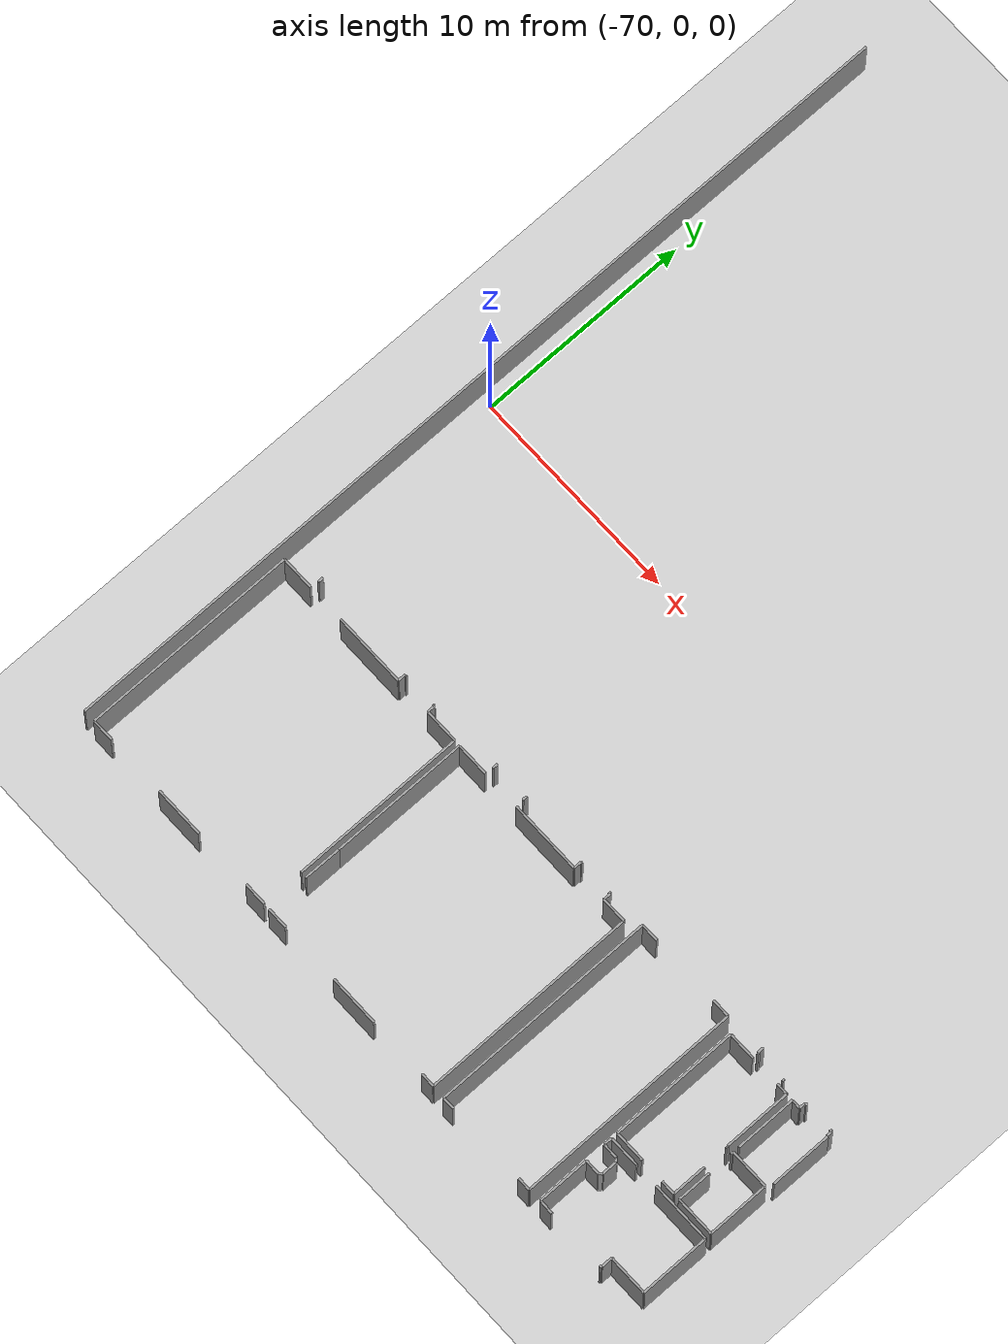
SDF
<sdf version="1.6">
 <world name="default">
  <model name="ground_plane">
   <static>1</static>
   <link name="link">
    <collision name="collision">
     <geometry><plane><normal>0 0 1</normal><size>100 100</size></plane></geometry>
     <surface><friction><ode><mu>100</mu><mu2>50</mu2></ode></friction></surface>
    </collision>
    <visual name="visual">
     <cast_shadows>0</cast_shadows>
     <geometry><plane><normal>0 0 1</normal><size>100 100</size></plane></geometry>
     <material>
      <script><uri>file://media/materials/scripts/gazebo.material</uri><name>Gazebo/Grey</name></script>
     </material>
    </visual>
   </link>
  </model>
  <model name="50055638">
   <static>1</static>
   <link name="Wall_39">
    <collision name="Wall_39_Collision">
     <geometry><box><size>10.0029868009 0.1 2.5</size></box></geometry>
     <pose>5.00149340044 0 1.25 0 0 0</pose>
    </collision>
    <visual name="Wall_39_Visual">
     <pose>5.00149340044 0 1.25 0 0 0</pose>
     <geometry><box><size>10.0029868009 0.1 2.5</size></box></geometry>
     <material>
      <script><uri>file://media/materials/scripts/gazebo.material</uri><name>Gazebo/Grey</name></script>
      <ambient>1 1 1 1</ambient>
     </material>
    </visual>
    <pose>0.555672061973 -41.7491849847 0 0 0 1.57079632679</pose>
   </link>
   <link name="Wall_40">
    <collision name="Wall_40_Collision">
     <geometry><box><size>1.56711722876 0.1 2.5</size></box></geometry>
     <pose>0.783558614379 0 1.25 0 0 0</pose>
    </collision>
    <visual name="Wall_40_Visual">
     <pose>0.783558614379 0 1.25 0 0 0</pose>
     <geometry><box><size>1.56711722876 0.1 2.5</size></box></geometry>
     <material>
      <script><uri>file://media/materials/scripts/gazebo.material</uri><name>Gazebo/Grey</name></script>
      <ambient>1 1 1 1</ambient>
     </material>
    </visual>
    <pose>0.555672061973 -31.7461981838 0 0 0 0.0</pose>
   </link>
   <link name="Wall_41">
    <collision name="Wall_41_Collision">
     <geometry><box><size>3.40889304075 0.1 2.5</size></box></geometry>
     <pose>1.70444652038 0 1.25 0 0 0</pose>
    </collision>
    <visual name="Wall_41_Visual">
     <pose>1.70444652038 0 1.25 0 0 0</pose>
     <geometry><box><size>3.40889304075 0.1 2.5</size></box></geometry>
     <material>
      <script><uri>file://media/materials/scripts/gazebo.material</uri><name>Gazebo/Grey</name></script>
      <ambient>1 1 1 1</ambient>
     </material>
    </visual>
    <pose>3.90470198718 -31.7461981838 0 0 0 0.0</pose>
   </link>
   <link name="Wall_42">
    <collision name="Wall_42_Collision">
     <geometry><box><size>0.354221874821 0.1 2.5</size></box></geometry>
     <pose>0.177110937411 0 1.25 0 0 0</pose>
    </collision>
    <visual name="Wall_42_Visual">
     <pose>0.177110937411 0 1.25 0 0 0</pose>
     <geometry><box><size>0.354221874821 0.1 2.5</size></box></geometry>
     <material>
      <script><uri>file://media/materials/scripts/gazebo.material</uri><name>Gazebo/Grey</name></script>
      <ambient>1 1 1 1</ambient>
     </material>
    </visual>
    <pose>7.31359502793 -31.7461981838 0 0 0 1.57079632679</pose>
   </link>
   <link name="Wall_43">
    <collision name="Wall_43_Collision">
     <geometry><box><size>0.08121556441 0.1 2.5</size></box></geometry>
     <pose>0.040607782205 0 1.25 0 0 0</pose>
    </collision>
    <visual name="Wall_43_Visual">
     <pose>0.040607782205 0 1.25 0 0 0</pose>
     <geometry><box><size>0.08121556441 0.1 2.5</size></box></geometry>
     <material>
      <script><uri>file://media/materials/scripts/gazebo.material</uri><name>Gazebo/Grey</name></script>
      <ambient>1 1 1 1</ambient>
     </material>
    </visual>
    <pose>7.31359502793 -31.3919763089 0 0 0 0.0</pose>
   </link>
   <link name="Wall_44">
    <collision name="Wall_44_Collision">
     <geometry><box><size>0.100280250891 0.1 2.5</size></box></geometry>
     <pose>0.0501401254456 0 1.25 0 0 0</pose>
    </collision>
    <visual name="Wall_44_Visual">
     <pose>0.0501401254456 0 1.25 0 0 0</pose>
     <geometry><box><size>0.100280250891 0.1 2.5</size></box></geometry>
     <material>
      <script><uri>file://media/materials/scripts/gazebo.material</uri><name>Gazebo/Grey</name></script>
      <ambient>1 1 1 1</ambient>
     </material>
    </visual>
    <pose>8.94299023253 -31.3919763089 0 0 0 0.0</pose>
   </link>
   <link name="Wall_45">
    <collision name="Wall_45_Collision">
     <geometry><box><size>0.348756664697 0.1 2.5</size></box></geometry>
     <pose>0.174378332348 0 1.25 0 0 0</pose>
    </collision>
    <visual name="Wall_45_Visual">
     <pose>0.174378332348 0 1.25 0 0 0</pose>
     <geometry><box><size>0.348756664697 0.1 2.5</size></box></geometry>
     <material>
      <script><uri>file://media/materials/scripts/gazebo.material</uri><name>Gazebo/Grey</name></script>
      <ambient>1 1 1 1</ambient>
     </material>
    </visual>
    <pose>9.04327048342 -31.3919763089 0 0 0 -1.57079632679</pose>
   </link>
   <link name="Wall_46">
    <collision name="Wall_46_Collision">
     <geometry><box><size>1.58630901315 0.1 2.5</size></box></geometry>
     <pose>0.793154506574 0 1.25 0 0 0</pose>
    </collision>
    <visual name="Wall_46_Visual">
     <pose>0.793154506574 0 1.25 0 0 0</pose>
     <geometry><box><size>1.58630901315 0.1 2.5</size></box></geometry>
     <material>
      <script><uri>file://media/materials/scripts/gazebo.material</uri><name>Gazebo/Grey</name></script>
      <ambient>1 1 1 1</ambient>
     </material>
    </visual>
    <pose>9.04327048342 -31.7407329736 0 0 0 0.0</pose>
   </link>
   <link name="Wall_47">
    <collision name="Wall_47_Collision">
     <geometry><box><size>8.08126640357 0.1 2.5</size></box></geometry>
     <pose>4.04063320179 0 1.25 0 0 0</pose>
    </collision>
    <visual name="Wall_47_Visual">
     <pose>4.04063320179 0 1.25 0 0 0</pose>
     <geometry><box><size>8.08126640357 0.1 2.5</size></box></geometry>
     <material>
      <script><uri>file://media/materials/scripts/gazebo.material</uri><name>Gazebo/Grey</name></script>
      <ambient>1 1 1 1</ambient>
     </material>
    </visual>
    <pose>10.6295794966 -31.7407329736 0 0 0 -1.57079632679</pose>
   </link>
   <link name="Wall_48">
    <collision name="Wall_48_Collision">
     <geometry><box><size>1.06584307221 0.1 2.5</size></box></geometry>
     <pose>0.532921536105 0 1.25 0 0 0</pose>
    </collision>
    <visual name="Wall_48_Visual">
     <pose>0.532921536105 0 1.25 0 0 0</pose>
     <geometry><box><size>1.06584307221 0.1 2.5</size></box></geometry>
     <material>
      <script><uri>file://media/materials/scripts/gazebo.material</uri><name>Gazebo/Grey</name></script>
      <ambient>1 1 1 1</ambient>
     </material>
    </visual>
    <pose>10.6295794966 -41.7413049142 0 0 0 3.14159265359</pose>
   </link>
   <link name="Wall_49">
    <collision name="Wall_49_Collision">
     <geometry><box><size>2.35067584314 0.1 2.5</size></box></geometry>
     <pose>1.17533792157 0 1.25 0 0 0</pose>
    </collision>
    <visual name="Wall_49_Visual">
     <pose>1.17533792157 0 1.25 0 0 0</pose>
     <geometry><box><size>2.35067584314 0.1 2.5</size></box></geometry>
     <material>
      <script><uri>file://media/materials/scripts/gazebo.material</uri><name>Gazebo/Grey</name></script>
      <ambient>1 1 1 1</ambient>
     </material>
    </visual>
    <pose>6.76097331579 -41.7413049142 0 0 0 3.14159265359</pose>
   </link>
   <link name="Wall_50">
    <collision name="Wall_50_Collision">
     <geometry><box><size>1.03638631526 0.1 2.5</size></box></geometry>
     <pose>0.518193157629 0 1.25 0 0 0</pose>
    </collision>
    <visual name="Wall_50_Visual">
     <pose>0.518193157629 0 1.25 0 0 0</pose>
     <geometry><box><size>1.03638631526 0.1 2.5</size></box></geometry>
     <material>
      <script><uri>file://media/materials/scripts/gazebo.material</uri><name>Gazebo/Grey</name></script>
      <ambient>1 1 1 1</ambient>
     </material>
    </visual>
    <pose>1.59202841909 -41.7413049142 0 0 0 -3.13398917</pose>
   </link>
   <link name="Wall_51">
    <collision name="Wall_51_Collision">
     <geometry><box><size>6.35845423522 0.1 2.5</size></box></geometry>
     <pose>3.17922711761 0 1.25 0 0 0</pose>
    </collision>
    <visual name="Wall_51_Visual">
     <pose>3.17922711761 0 1.25 0 0 0</pose>
     <geometry><box><size>6.35845423522 0.1 2.5</size></box></geometry>
     <material>
      <script><uri>file://media/materials/scripts/gazebo.material</uri><name>Gazebo/Grey</name></script>
      <ambient>1 1 1 1</ambient>
     </material>
    </visual>
    <pose>10.9144059126 -38.1087195521 0 0 0 1.57079632679</pose>
   </link>
   <link name="Wall_52">
    <collision name="Wall_52_Collision">
     <geometry><box><size>1.52606460387 0.1 2.5</size></box></geometry>
     <pose>0.763032301934 0 1.25 0 0 0</pose>
    </collision>
    <visual name="Wall_52_Visual">
     <pose>0.763032301934 0 1.25 0 0 0</pose>
     <geometry><box><size>1.52606460387 0.1 2.5</size></box></geometry>
     <material>
      <script><uri>file://media/materials/scripts/gazebo.material</uri><name>Gazebo/Grey</name></script>
      <ambient>1 1 1 1</ambient>
     </material>
    </visual>
    <pose>10.9144059126 -31.7502653169 0 0 0 0.0</pose>
   </link>
   <link name="Wall_53">
    <collision name="Wall_53_Collision">
     <geometry><box><size>3.38970125636 0.1 2.5</size></box></geometry>
     <pose>1.69485062818 0 1.25 0 0 0</pose>
    </collision>
    <visual name="Wall_53_Visual">
     <pose>1.69485062818 0 1.25 0 0 0</pose>
     <geometry><box><size>3.38970125636 0.1 2.5</size></box></geometry>
     <material>
      <script><uri>file://media/materials/scripts/gazebo.material</uri><name>Gazebo/Grey</name></script>
      <ambient>1 1 1 1</ambient>
     </material>
    </visual>
    <pose>14.2498363614 -31.7502653169 0 0 0 0.0</pose>
   </link>
   <link name="Wall_54">
    <collision name="Wall_54_Collision">
     <geometry><box><size>0.349137958426 0.1 2.5</size></box></geometry>
     <pose>0.174568979213 0 1.25 0 0 0</pose>
    </collision>
    <visual name="Wall_54_Visual">
     <pose>0.174568979213 0 1.25 0 0 0</pose>
     <geometry><box><size>0.349137958426 0.1 2.5</size></box></geometry>
     <material>
      <script><uri>file://media/materials/scripts/gazebo.material</uri><name>Gazebo/Grey</name></script>
      <ambient>1 1 1 1</ambient>
     </material>
    </visual>
    <pose>17.6395376178 -31.7502653169 0 0 0 1.57079632679</pose>
   </link>
   <link name="Wall_55">
    <collision name="Wall_55_Collision">
     <geometry><box><size>0.0879517536334 0.1 2.5</size></box></geometry>
     <pose>0.0439758768167 0 1.25 0 0 0</pose>
    </collision>
    <visual name="Wall_55_Visual">
     <pose>0.0439758768167 0 1.25 0 0 0</pose>
     <geometry><box><size>0.0879517536334 0.1 2.5</size></box></geometry>
     <material>
      <script><uri>file://media/materials/scripts/gazebo.material</uri><name>Gazebo/Grey</name></script>
      <ambient>1 1 1 1</ambient>
     </material>
    </visual>
    <pose>17.6395376178 -31.4011273585 0 0 0 0.0</pose>
   </link>
   <link name="Wall_56">
    <collision name="Wall_56_Collision">
     <geometry><box><size>0.0950692365864 0.1 2.5</size></box></geometry>
     <pose>0.0475346182932 0 1.25 0 0 0</pose>
    </collision>
    <visual name="Wall_56_Visual">
     <pose>0.0475346182932 0 1.25 0 0 0</pose>
     <geometry><box><size>0.0950692365864 0.1 2.5</size></box></geometry>
     <material>
      <script><uri>file://media/materials/scripts/gazebo.material</uri><name>Gazebo/Grey</name></script>
      <ambient>1 1 1 1</ambient>
     </material>
    </visual>
    <pose>19.2721102701 -31.4011273585 0 0 0 0.0</pose>
   </link>
   <link name="Wall_57">
    <collision name="Wall_57_Collision">
     <geometry><box><size>0.347231489778 0.1 2.5</size></box></geometry>
     <pose>0.173615744889 0 1.25 0 0 0</pose>
    </collision>
    <visual name="Wall_57_Visual">
     <pose>0.173615744889 0 1.25 0 0 0</pose>
     <geometry><box><size>0.347231489778 0.1 2.5</size></box></geometry>
     <material>
      <script><uri>file://media/materials/scripts/gazebo.material</uri><name>Gazebo/Grey</name></script>
      <ambient>1 1 1 1</ambient>
     </material>
    </visual>
    <pose>19.3671795067 -31.4011273585 0 0 0 -1.57079632679</pose>
   </link>
   <link name="Wall_58">
    <collision name="Wall_58_Collision">
     <geometry><box><size>1.16396265863 0.1 2.5</size></box></geometry>
     <pose>0.581981329317 0 1.25 0 0 0</pose>
    </collision>
    <visual name="Wall_58_Visual">
     <pose>0.581981329317 0 1.25 0 0 0</pose>
     <geometry><box><size>1.16396265863 0.1 2.5</size></box></geometry>
     <material>
      <script><uri>file://media/materials/scripts/gazebo.material</uri><name>Gazebo/Grey</name></script>
      <ambient>1 1 1 1</ambient>
     </material>
    </visual>
    <pose>19.3671795067 -31.7483588482 0 0 0 0.0</pose>
   </link>
   <link name="Wall_59">
    <collision name="Wall_59_Collision">
     <geometry><box><size>9.99777578658 0.1 2.5</size></box></geometry>
     <pose>4.99888789329 0 1.25 0 0 0</pose>
    </collision>
    <visual name="Wall_59_Visual">
     <pose>4.99888789329 0 1.25 0 0 0</pose>
     <geometry><box><size>9.99777578658 0.1 2.5</size></box></geometry>
     <material>
      <script><uri>file://media/materials/scripts/gazebo.material</uri><name>Gazebo/Grey</name></script>
      <ambient>1 1 1 1</ambient>
     </material>
    </visual>
    <pose>20.5311421654 -31.7483588482 0 0 0 -1.57079632679</pose>
   </link>
   <link name="Wall_60">
    <collision name="Wall_60_Collision">
     <geometry><box><size>0.660782033439 0.1 2.5</size></box></geometry>
     <pose>0.33039101672 0 1.25 0 0 0</pose>
    </collision>
    <visual name="Wall_60_Visual">
     <pose>0.33039101672 0 1.25 0 0 0</pose>
     <geometry><box><size>0.660782033439 0.1 2.5</size></box></geometry>
     <material>
      <script><uri>file://media/materials/scripts/gazebo.material</uri><name>Gazebo/Grey</name></script>
      <ambient>1 1 1 1</ambient>
     </material>
    </visual>
    <pose>20.5311421654 -41.7461346348 0 0 0 3.14159265359</pose>
   </link>
   <link name="Wall_61">
    <collision name="Wall_61_Collision">
     <geometry><box><size>2.36351273203 0.1 2.5</size></box></geometry>
     <pose>1.18175636602 0 1.25 0 0 0</pose>
    </collision>
    <visual name="Wall_61_Visual">
     <pose>1.18175636602 0 1.25 0 0 0</pose>
     <geometry><box><size>2.36351273203 0.1 2.5</size></box></geometry>
     <material>
      <script><uri>file://media/materials/scripts/gazebo.material</uri><name>Gazebo/Grey</name></script>
      <ambient>1 1 1 1</ambient>
     </material>
    </visual>
    <pose>17.0800526185 -41.7461346348 0 0 0 3.14159265359</pose>
   </link>
   <link name="Wall_62">
    <collision name="Wall_62_Collision">
     <geometry><box><size>0.989584326286 0.1 2.5</size></box></geometry>
     <pose>0.494792163143 0 1.25 0 0 0</pose>
    </collision>
    <visual name="Wall_62_Visual">
     <pose>0.494792163143 0 1.25 0 0 0</pose>
     <geometry><box><size>0.989584326286 0.1 2.5</size></box></geometry>
     <material>
      <script><uri>file://media/materials/scripts/gazebo.material</uri><name>Gazebo/Grey</name></script>
      <ambient>1 1 1 1</ambient>
     </material>
    </visual>
    <pose>11.8957288747 -41.7461346348 0 0 0 3.14159265359</pose>
   </link>
   <link name="Wall_63">
    <collision name="Wall_63_Collision">
     <geometry><box><size>1.71940037198 0.1 2.5</size></box></geometry>
     <pose>0.859700185989 0 1.25 0 0 0</pose>
    </collision>
    <visual name="Wall_63_Visual">
     <pose>0.859700185989 0 1.25 0 0 0</pose>
     <geometry><box><size>1.71940037198 0.1 2.5</size></box></geometry>
     <material>
      <script><uri>file://media/materials/scripts/gazebo.material</uri><name>Gazebo/Grey</name></script>
      <ambient>1 1 1 1</ambient>
     </material>
    </visual>
    <pose>10.9061445485 -39.8281000769 0 0 0 1.56599151457</pose>
   </link>
   <link name="Wall_64">
    <collision name="Wall_64_Collision">
     <geometry><box><size>10.4550740663 0.1 2.5</size></box></geometry>
     <pose>5.22753703315 0 1.25 0 0 0</pose>
    </collision>
    <visual name="Wall_64_Visual">
     <pose>5.22753703315 0 1.25 0 0 0</pose>
     <geometry><box><size>10.4550740663 0.1 2.5</size></box></geometry>
     <material>
      <script><uri>file://media/materials/scripts/gazebo.material</uri><name>Gazebo/Grey</name></script>
      <ambient>1 1 1 1</ambient>
     </material>
    </visual>
    <pose>21.149346399 -41.7744774687 0 0 0 1.57079632679</pose>
   </link>
   <link name="Wall_65">
    <collision name="Wall_65_Collision">
     <geometry><box><size>0.838210715625 0.1 2.5</size></box></geometry>
     <pose>0.419105357812 0 1.25 0 0 0</pose>
    </collision>
    <visual name="Wall_65_Visual">
     <pose>0.419105357812 0 1.25 0 0 0</pose>
     <geometry><box><size>0.838210715625 0.1 2.5</size></box></geometry>
     <material>
      <script><uri>file://media/materials/scripts/gazebo.material</uri><name>Gazebo/Grey</name></script>
      <ambient>1 1 1 1</ambient>
     </material>
    </visual>
    <pose>21.149346399 -31.3194034024 0 0 0 0.0</pose>
   </link>
   <link name="Wall_66">
    <collision name="Wall_66_Collision">
     <geometry><box><size>0.860071556123 0.1 2.5</size></box></geometry>
     <pose>0.430035778062 0 1.25 0 0 0</pose>
    </collision>
    <visual name="Wall_66_Visual">
     <pose>0.430035778062 0 1.25 0 0 0</pose>
     <geometry><box><size>0.860071556123 0.1 2.5</size></box></geometry>
     <material>
      <script><uri>file://media/materials/scripts/gazebo.material</uri><name>Gazebo/Grey</name></script>
      <ambient>1 1 1 1</ambient>
     </material>
    </visual>
    <pose>25.2490165799 -31.3194034024 0 0 0 0.0</pose>
   </link>
   <link name="Wall_67">
    <collision name="Wall_67_Collision">
     <geometry><box><size>10.4362635756 0.1 2.5</size></box></geometry>
     <pose>5.21813178782 0 1.25 0 0 0</pose>
    </collision>
    <visual name="Wall_67_Visual">
     <pose>5.21813178782 0 1.25 0 0 0</pose>
     <geometry><box><size>10.4362635756 0.1 2.5</size></box></geometry>
     <material>
      <script><uri>file://media/materials/scripts/gazebo.material</uri><name>Gazebo/Grey</name></script>
      <ambient>1 1 1 1</ambient>
     </material>
    </visual>
    <pose>26.109088136 -31.3194034024 0 0 0 -1.57079632679</pose>
   </link>
   <link name="Wall_68">
    <collision name="Wall_68_Collision">
     <geometry><box><size>0.605367344734 0.1 2.5</size></box></geometry>
     <pose>0.302683672367 0 1.25 0 0 0</pose>
    </collision>
    <visual name="Wall_68_Visual">
     <pose>0.302683672367 0 1.25 0 0 0</pose>
     <geometry><box><size>0.605367344734 0.1 2.5</size></box></geometry>
     <material>
      <script><uri>file://media/materials/scripts/gazebo.material</uri><name>Gazebo/Grey</name></script>
      <ambient>1 1 1 1</ambient>
     </material>
    </visual>
    <pose>26.109088136 -41.7556669781 0 0 0 3.14159265359</pose>
   </link>
   <link name="Wall_69">
    <collision name="Wall_69_Collision">
     <geometry><box><size>0.574409340136 0.1 2.5</size></box></geometry>
     <pose>0.287204670068 0 1.25 0 0 0</pose>
    </collision>
    <visual name="Wall_69_Visual">
     <pose>0.287204670068 0 1.25 0 0 0</pose>
     <geometry><box><size>0.574409340136 0.1 2.5</size></box></geometry>
     <material>
      <script><uri>file://media/materials/scripts/gazebo.material</uri><name>Gazebo/Grey</name></script>
      <ambient>1 1 1 1</ambient>
     </material>
    </visual>
    <pose>21.7234476579 -41.7556669781 0 0 0 -3.10883926148</pose>
   </link>
   <link name="Wall_70">
    <collision name="Wall_70_Collision">
     <geometry><box><size>2.38550067044 0.1 2.5</size></box></geometry>
     <pose>1.19275033522 0 1.25 0 0 0</pose>
    </collision>
    <visual name="Wall_70_Visual">
     <pose>1.19275033522 0 1.25 0 0 0</pose>
     <geometry><box><size>2.38550067044 0.1 2.5</size></box></geometry>
     <material>
      <script><uri>file://media/materials/scripts/gazebo.material</uri><name>Gazebo/Grey</name></script>
      <ambient>1 1 1 1</ambient>
     </material>
    </visual>
    <pose>26.723987824 -41.7166479197 0 0 0 1.57079632679</pose>
   </link>
   <link name="Wall_71">
    <collision name="Wall_71_Collision">
     <geometry><box><size>0.691539727629 0.1 2.5</size></box></geometry>
     <pose>0.345769863815 0 1.25 0 0 0</pose>
    </collision>
    <visual name="Wall_71_Visual">
     <pose>0.345769863815 0 1.25 0 0 0</pose>
     <geometry><box><size>0.691539727629 0.1 2.5</size></box></geometry>
     <material>
      <script><uri>file://media/materials/scripts/gazebo.material</uri><name>Gazebo/Grey</name></script>
      <ambient>1 1 1 1</ambient>
     </material>
    </visual>
    <pose>26.723987824 -39.3311472493 0 0 0 0.0</pose>
   </link>
   <link name="Wall_72">
    <collision name="Wall_72_Collision">
     <geometry><box><size>0.176400269247 0.1 2.5</size></box></geometry>
     <pose>0.0882001346237 0 1.25 0 0 0</pose>
    </collision>
    <visual name="Wall_72_Visual">
     <pose>0.0882001346237 0 1.25 0 0 0</pose>
     <geometry><box><size>0.176400269247 0.1 2.5</size></box></geometry>
     <material>
      <script><uri>file://media/materials/scripts/gazebo.material</uri><name>Gazebo/Grey</name></script>
      <ambient>1 1 1 1</ambient>
     </material>
    </visual>
    <pose>27.4155275516 -39.3311472493 0 0 0 0.756863606627</pose>
   </link>
   <link name="Wall_73">
    <collision name="Wall_73_Collision">
     <geometry><box><size>0.698403014762 0.1 2.5</size></box></geometry>
     <pose>0.349201507381 0 1.25 0 0 0</pose>
    </collision>
    <visual name="Wall_73_Visual">
     <pose>0.349201507381 0 1.25 0 0 0</pose>
     <geometry><box><size>0.698403014762 0.1 2.5</size></box></geometry>
     <material>
      <script><uri>file://media/materials/scripts/gazebo.material</uri><name>Gazebo/Grey</name></script>
      <ambient>1 1 1 1</ambient>
     </material>
    </visual>
    <pose>27.5437693427 -39.2100229412 0 0 0 1.57079632679</pose>
   </link>
   <link name="Wall_74">
    <collision name="Wall_74_Collision">
     <geometry><box><size>0.183880853032 0.1 2.5</size></box></geometry>
     <pose>0.0919404265162 0 1.25 0 0 0</pose>
    </collision>
    <visual name="Wall_74_Visual">
     <pose>0.0919404265162 0 1.25 0 0 0</pose>
     <geometry><box><size>0.183880853032 0.1 2.5</size></box></geometry>
     <material>
      <script><uri>file://media/materials/scripts/gazebo.material</uri><name>Gazebo/Grey</name></script>
      <ambient>1 1 1 1</ambient>
     </material>
    </visual>
    <pose>27.5437693427 -38.5116199264 0 0 0 2.36205952558</pose>
   </link>
   <link name="Wall_75">
    <collision name="Wall_75_Collision">
     <geometry><box><size>0.70056367923 0.1 2.5</size></box></geometry>
     <pose>0.350281839615 0 1.25 0 0 0</pose>
    </collision>
    <visual name="Wall_75_Visual">
     <pose>0.350281839615 0 1.25 0 0 0</pose>
     <geometry><box><size>0.70056367923 0.1 2.5</size></box></geometry>
     <material>
      <script><uri>file://media/materials/scripts/gazebo.material</uri><name>Gazebo/Grey</name></script>
      <ambient>1 1 1 1</ambient>
     </material>
    </visual>
    <pose>27.4129855935 -38.3823613521 0 0 0 3.14159265359</pose>
   </link>
   <link name="Wall_76">
    <collision name="Wall_76_Collision">
     <geometry><box><size>0.390826072865 0.1 2.5</size></box></geometry>
     <pose>0.195413036433 0 1.25 0 0 0</pose>
    </collision>
    <visual name="Wall_76_Visual">
     <pose>0.195413036433 0 1.25 0 0 0</pose>
     <geometry><box><size>0.390826072865 0.1 2.5</size></box></geometry>
     <material>
      <script><uri>file://media/materials/scripts/gazebo.material</uri><name>Gazebo/Grey</name></script>
      <ambient>1 1 1 1</ambient>
     </material>
    </visual>
    <pose>26.7124219142 -38.3823613521 0 0 0 1.57079632679</pose>
   </link>
   <link name="Wall_77">
    <collision name="Wall_77_Collision">
     <geometry><box><size>1.43582508786 0.1 2.5</size></box></geometry>
     <pose>0.717912543928 0 1.25 0 0 0</pose>
    </collision>
    <visual name="Wall_77_Visual">
     <pose>0.717912543928 0 1.25 0 0 0</pose>
     <geometry><box><size>1.43582508786 0.1 2.5</size></box></geometry>
     <material>
      <script><uri>file://media/materials/scripts/gazebo.material</uri><name>Gazebo/Grey</name></script>
      <ambient>1 1 1 1</ambient>
     </material>
    </visual>
    <pose>26.7124219142 -37.9915352792 0 0 0 0.0</pose>
   </link>
   <link name="Wall_78">
    <collision name="Wall_78_Collision">
     <geometry><box><size>2.83924020869 0.1 2.5</size></box></geometry>
     <pose>1.41962010435 0 1.25 0 0 0</pose>
    </collision>
    <visual name="Wall_78_Visual">
     <pose>1.41962010435 0 1.25 0 0 0</pose>
     <geometry><box><size>2.83924020869 0.1 2.5</size></box></geometry>
     <material>
      <script><uri>file://media/materials/scripts/gazebo.material</uri><name>Gazebo/Grey</name></script>
      <ambient>1 1 1 1</ambient>
     </material>
    </visual>
    <pose>29.2819603582 -37.9915352792 0 0 0 0.0</pose>
   </link>
   <link name="Wall_79">
    <collision name="Wall_79_Collision">
     <geometry><box><size>3.21405194492 0.1 2.5</size></box></geometry>
     <pose>1.60702597246 0 1.25 0 0 0</pose>
    </collision>
    <visual name="Wall_79_Visual">
     <pose>1.60702597246 0 1.25 0 0 0</pose>
     <geometry><box><size>3.21405194492 0.1 2.5</size></box></geometry>
     <material>
      <script><uri>file://media/materials/scripts/gazebo.material</uri><name>Gazebo/Grey</name></script>
      <ambient>1 1 1 1</ambient>
     </material>
    </visual>
    <pose>32.1212005669 -37.9915352792 0 0 0 -1.57079632679</pose>
   </link>
   <link name="Wall_80">
    <collision name="Wall_80_Collision">
     <geometry><box><size>1.85308752598 0.1 2.5</size></box></geometry>
     <pose>0.926543762988 0 1.25 0 0 0</pose>
    </collision>
    <visual name="Wall_80_Visual">
     <pose>0.926543762988 0 1.25 0 0 0</pose>
     <geometry><box><size>1.85308752598 0.1 2.5</size></box></geometry>
     <material>
      <script><uri>file://media/materials/scripts/gazebo.material</uri><name>Gazebo/Grey</name></script>
      <ambient>1 1 1 1</ambient>
     </material>
    </visual>
    <pose>32.1212005669 -41.2055872241 0 0 0 3.14159265359</pose>
   </link>
   <link name="Wall_81">
    <collision name="Wall_81_Collision">
     <geometry><box><size>0.535971885942 0.1 2.5</size></box></geometry>
     <pose>0.267985942971 0 1.25 0 0 0</pose>
    </collision>
    <visual name="Wall_81_Visual">
     <pose>0.267985942971 0 1.25 0 0 0</pose>
     <geometry><box><size>0.535971885942 0.1 2.5</size></box></geometry>
     <material>
      <script><uri>file://media/materials/scripts/gazebo.material</uri><name>Gazebo/Grey</name></script>
      <ambient>1 1 1 1</ambient>
     </material>
    </visual>
    <pose>30.2681130409 -41.2055872241 0 0 0 -1.57079632679</pose>
   </link>
   <link name="Wall_82">
    <collision name="Wall_82_Collision">
     <geometry><box><size>0.0831220330582 0.1 2.5</size></box></geometry>
     <pose>0.0415610165291 0 1.25 0 0 0</pose>
    </collision>
    <visual name="Wall_82_Visual">
     <pose>0.0415610165291 0 1.25 0 0 0</pose>
     <geometry><box><size>0.0831220330582 0.1 2.5</size></box></geometry>
     <material>
      <script><uri>file://media/materials/scripts/gazebo.material</uri><name>Gazebo/Grey</name></script>
      <ambient>1 1 1 1</ambient>
     </material>
    </visual>
    <pose>30.2681130409 -41.7415591101 0 0 0 3.14159265359</pose>
   </link>
   <link name="Wall_83">
    <collision name="Wall_83_Collision">
     <geometry><box><size>0.679794918836 0.1 2.5</size></box></geometry>
     <pose>0.339897459418 0 1.25 0 0 0</pose>
    </collision>
    <visual name="Wall_83_Visual">
     <pose>0.339897459418 0 1.25 0 0 0</pose>
     <geometry><box><size>0.679794918836 0.1 2.5</size></box></geometry>
     <material>
      <script><uri>file://media/materials/scripts/gazebo.material</uri><name>Gazebo/Grey</name></script>
      <ambient>1 1 1 1</ambient>
     </material>
    </visual>
    <pose>27.4033261523 -41.7415591101 0 0 0 3.10493929179</pose>
   </link>
   <link name="Wall_84">
    <collision name="Wall_84_Collision">
     <geometry><box><size>5.95085123825 0.1 2.5</size></box></geometry>
     <pose>2.97542561913 0 1.25 0 0 0</pose>
    </collision>
    <visual name="Wall_84_Visual">
     <pose>2.97542561913 0 1.25 0 0 0</pose>
     <geometry><box><size>5.95085123825 0.1 2.5</size></box></geometry>
     <material>
      <script><uri>file://media/materials/scripts/gazebo.material</uri><name>Gazebo/Grey</name></script>
      <ambient>1 1 1 1</ambient>
     </material>
    </visual>
    <pose>26.7224626491 -37.6926009952 0 0 0 1.57079632679</pose>
   </link>
   <link name="Wall_85">
    <collision name="Wall_85_Collision">
     <geometry><box><size>1.29665287654 0.1 2.5</size></box></geometry>
     <pose>0.648326438272 0 1.25 0 0 0</pose>
    </collision>
    <visual name="Wall_85_Visual">
     <pose>0.648326438272 0 1.25 0 0 0</pose>
     <geometry><box><size>1.29665287654 0.1 2.5</size></box></geometry>
     <material>
      <script><uri>file://media/materials/scripts/gazebo.material</uri><name>Gazebo/Grey</name></script>
      <ambient>1 1 1 1</ambient>
     </material>
    </visual>
    <pose>26.7224626491 -31.7417497569 0 0 0 0.0</pose>
   </link>
   <link name="Wall_86">
    <collision name="Wall_86_Collision">
     <geometry><box><size>0.549571362299 0.1 2.5</size></box></geometry>
     <pose>0.274785681149 0 1.25 0 0 0</pose>
    </collision>
    <visual name="Wall_86_Visual">
     <pose>0.274785681149 0 1.25 0 0 0</pose>
     <geometry><box><size>0.549571362299 0.1 2.5</size></box></geometry>
     <material>
      <script><uri>file://media/materials/scripts/gazebo.material</uri><name>Gazebo/Grey</name></script>
      <ambient>1 1 1 1</ambient>
     </material>
    </visual>
    <pose>29.4074059952 -31.7417497569 0 0 0 0.0</pose>
   </link>
   <link name="Wall_87">
    <collision name="Wall_87_Collision">
     <geometry><box><size>3.10551032988 0.1 2.5</size></box></geometry>
     <pose>1.55275516494 0 1.25 0 0 0</pose>
    </collision>
    <visual name="Wall_87_Visual">
     <pose>1.55275516494 0 1.25 0 0 0</pose>
     <geometry><box><size>3.10551032988 0.1 2.5</size></box></geometry>
     <material>
      <script><uri>file://media/materials/scripts/gazebo.material</uri><name>Gazebo/Grey</name></script>
      <ambient>1 1 1 1</ambient>
     </material>
    </visual>
    <pose>29.9569773575 -31.7417497569 0 0 0 -1.57079632679</pose>
   </link>
   <link name="Wall_88">
    <collision name="Wall_88_Collision">
     <geometry><box><size>0.0246569945157 0.1 2.5</size></box></geometry>
     <pose>0.0123284972579 0 1.25 0 0 0</pose>
    </collision>
    <visual name="Wall_88_Visual">
     <pose>0.0123284972579 0 1.25 0 0 0</pose>
     <geometry><box><size>0.0246569945157 0.1 2.5</size></box></geometry>
     <material>
      <script><uri>file://media/materials/scripts/gazebo.material</uri><name>Gazebo/Grey</name></script>
      <ambient>1 1 1 1</ambient>
     </material>
    </visual>
    <pose>29.9569773575 -34.8472600868 0 0 0 0.0</pose>
   </link>
   <link name="Wall_89">
    <collision name="Wall_89_Collision">
     <geometry><box><size>0.116802979175 0.1 2.5</size></box></geometry>
     <pose>0.0584014895875 0 1.25 0 0 0</pose>
    </collision>
    <visual name="Wall_89_Visual">
     <pose>0.0584014895875 0 1.25 0 0 0</pose>
     <geometry><box><size>0.116802979175 0.1 2.5</size></box></geometry>
     <material>
      <script><uri>file://media/materials/scripts/gazebo.material</uri><name>Gazebo/Grey</name></script>
      <ambient>1 1 1 1</ambient>
     </material>
    </visual>
    <pose>29.981634352 -34.8472600868 0 0 0 -1.57079632679</pose>
   </link>
   <link name="Wall_90">
    <collision name="Wall_90_Collision">
     <geometry><box><size>1.60410272053 0.1 2.5</size></box></geometry>
     <pose>0.802051360265 0 1.25 0 0 0</pose>
    </collision>
    <visual name="Wall_90_Visual">
     <pose>0.802051360265 0 1.25 0 0 0</pose>
     <geometry><box><size>1.60410272053 0.1 2.5</size></box></geometry>
     <material>
      <script><uri>file://media/materials/scripts/gazebo.material</uri><name>Gazebo/Grey</name></script>
      <ambient>1 1 1 1</ambient>
     </material>
    </visual>
    <pose>29.981634352 -36.0956157576 0 0 0 -1.57079632679</pose>
   </link>
   <link name="Wall_91">
    <collision name="Wall_91_Collision">
     <geometry><box><size>0.667136928933 0.1 2.5</size></box></geometry>
     <pose>0.333568464467 0 1.25 0 0 0</pose>
    </collision>
    <visual name="Wall_91_Visual">
     <pose>0.333568464467 0 1.25 0 0 0</pose>
     <geometry><box><size>0.667136928933 0.1 2.5</size></box></geometry>
     <material>
      <script><uri>file://media/materials/scripts/gazebo.material</uri><name>Gazebo/Grey</name></script>
      <ambient>1 1 1 1</ambient>
     </material>
    </visual>
    <pose>29.981634352 -37.6997184781 0 0 0 3.14159265359</pose>
   </link>
   <link name="Wall_92">
    <collision name="Wall_92_Collision">
     <geometry><box><size>1.44308722097 0.1 2.5</size></box></geometry>
     <pose>0.721543610487 0 1.25 0 0 0</pose>
    </collision>
    <visual name="Wall_92_Visual">
     <pose>0.721543610487 0 1.25 0 0 0</pose>
     <geometry><box><size>1.44308722097 0.1 2.5</size></box></geometry>
     <material>
      <script><uri>file://media/materials/scripts/gazebo.material</uri><name>Gazebo/Grey</name></script>
      <ambient>1 1 1 1</ambient>
     </material>
    </visual>
    <pose>28.1655323178 -37.6997184781 0 0 0 3.13666051109</pose>
   </link>
   <link name="Wall_93">
    <collision name="Wall_93_Collision">
     <geometry><box><size>1.57728506155 0.1 2.5</size></box></geometry>
     <pose>0.788642530774 0 1.25 0 0 0</pose>
    </collision>
    <visual name="Wall_93_Visual">
     <pose>0.788642530774 0 1.25 0 0 0</pose>
     <geometry><box><size>1.57728506155 0.1 2.5</size></box></geometry>
     <material>
      <script><uri>file://media/materials/scripts/gazebo.material</uri><name>Gazebo/Grey</name></script>
      <ambient>1 1 1 1</ambient>
     </material>
    </visual>
    <pose>30.2847628671 -37.6946345617 0 0 0 1.57079632679</pose>
   </link>
   <link name="Wall_94">
    <collision name="Wall_94_Collision">
     <geometry><box><size>0.109431300402 0.1 2.5</size></box></geometry>
     <pose>0.0547156502011 0 1.25 0 0 0</pose>
    </collision>
    <visual name="Wall_94_Visual">
     <pose>0.0547156502011 0 1.25 0 0 0</pose>
     <geometry><box><size>0.109431300402 0.1 2.5</size></box></geometry>
     <material>
      <script><uri>file://media/materials/scripts/gazebo.material</uri><name>Gazebo/Grey</name></script>
      <ambient>1 1 1 1</ambient>
     </material>
    </visual>
    <pose>30.2847628671 -34.9666050242 0 0 0 1.57079632679</pose>
   </link>
   <link name="Wall_95">
    <collision name="Wall_95_Collision">
     <geometry><box><size>1.8302099022 0.1 2.5</size></box></geometry>
     <pose>0.915104951099 0 1.25 0 0 0</pose>
    </collision>
    <visual name="Wall_95_Visual">
     <pose>0.915104951099 0 1.25 0 0 0</pose>
     <geometry><box><size>1.8302099022 0.1 2.5</size></box></geometry>
     <material>
      <script><uri>file://media/materials/scripts/gazebo.material</uri><name>Gazebo/Grey</name></script>
      <ambient>1 1 1 1</ambient>
     </material>
    </visual>
    <pose>30.2847628671 -34.8571737238 0 0 0 0.0</pose>
   </link>
   <link name="Wall_96">
    <collision name="Wall_96_Collision">
     <geometry><box><size>2.83771503378 0.1 2.5</size></box></geometry>
     <pose>1.41885751689 0 1.25 0 0 0</pose>
    </collision>
    <visual name="Wall_96_Visual">
     <pose>1.41885751689 0 1.25 0 0 0</pose>
     <geometry><box><size>2.83771503378 0.1 2.5</size></box></geometry>
     <material>
      <script><uri>file://media/materials/scripts/gazebo.material</uri><name>Gazebo/Grey</name></script>
      <ambient>1 1 1 1</ambient>
     </material>
    </visual>
    <pose>32.1149727693 -34.8571737238 0 0 0 -1.57079632679</pose>
   </link>
   <link name="Wall_97">
    <collision name="Wall_97_Collision">
     <geometry><box><size>1.83020991985 0.1 2.5</size></box></geometry>
     <pose>0.915104959925 0 1.25 0 0 0</pose>
    </collision>
    <visual name="Wall_97_Visual">
     <pose>0.915104959925 0 1.25 0 0 0</pose>
     <geometry><box><size>1.83020991985 0.1 2.5</size></box></geometry>
     <material>
      <script><uri>file://media/materials/scripts/gazebo.material</uri><name>Gazebo/Grey</name></script>
      <ambient>1 1 1 1</ambient>
     </material>
    </visual>
    <pose>32.1149727693 -37.6948887576 0 0 0 3.1414537647</pose>
   </link>
   <link name="Wall_98">
    <collision name="Wall_98_Collision">
     <geometry><box><size>2.82348006787 0.1 2.5</size></box></geometry>
     <pose>1.41174003394 0 1.25 0 0 0</pose>
    </collision>
    <visual name="Wall_98_Visual">
     <pose>1.41174003394 0 1.25 0 0 0</pose>
     <geometry><box><size>2.82348006787 0.1 2.5</size></box></geometry>
     <material>
      <script><uri>file://media/materials/scripts/gazebo.material</uri><name>Gazebo/Grey</name></script>
      <ambient>1 1 1 1</ambient>
     </material>
    </visual>
    <pose>30.2818396151 -34.5694240558 0 0 0 1.57079632679</pose>
   </link>
   <link name="Wall_99">
    <collision name="Wall_99_Collision">
     <geometry><box><size>0.423744431523 0.1 2.5</size></box></geometry>
     <pose>0.211872215761 0 1.25 0 0 0</pose>
    </collision>
    <visual name="Wall_99_Visual">
     <pose>0.211872215761 0 1.25 0 0 0</pose>
     <geometry><box><size>0.423744431523 0.1 2.5</size></box></geometry>
     <material>
      <script><uri>file://media/materials/scripts/gazebo.material</uri><name>Gazebo/Grey</name></script>
      <ambient>1 1 1 1</ambient>
     </material>
    </visual>
    <pose>30.2818396151 -31.745943988 0 0 0 0.0</pose>
   </link>
   <link name="Wall_100">
    <collision name="Wall_100_Collision">
     <geometry><box><size>0.289783234515 0.1 2.5</size></box></geometry>
     <pose>0.144891617257 0 1.25 0 0 0</pose>
    </collision>
    <visual name="Wall_100_Visual">
     <pose>0.144891617257 0 1.25 0 0 0</pose>
     <geometry><box><size>0.289783234515 0.1 2.5</size></box></geometry>
     <material>
      <script><uri>file://media/materials/scripts/gazebo.material</uri><name>Gazebo/Grey</name></script>
      <ambient>1 1 1 1</ambient>
     </material>
    </visual>
    <pose>30.7055840467 -31.745943988 0 0 0 1.57079632679</pose>
   </link>
   <link name="Wall_101">
    <collision name="Wall_101_Collision">
     <geometry><box><size>0.102186719539 0.1 2.5</size></box></geometry>
     <pose>0.0510933597697 0 1.25 0 0 0</pose>
    </collision>
    <visual name="Wall_101_Visual">
     <pose>0.0510933597697 0 1.25 0 0 0</pose>
     <geometry><box><size>0.102186719539 0.1 2.5</size></box></geometry>
     <material>
      <script><uri>file://media/materials/scripts/gazebo.material</uri><name>Gazebo/Grey</name></script>
      <ambient>1 1 1 1</ambient>
     </material>
    </visual>
    <pose>30.7055840467 -31.4561607534 0 0 0 0.0</pose>
   </link>
   <link name="Wall_102">
    <collision name="Wall_102_Collision">
     <geometry><box><size>0.10116993626 0.1 2.5</size></box></geometry>
     <pose>0.0505849681302 0 1.25 0 0 0</pose>
    </collision>
    <visual name="Wall_102_Visual">
     <pose>0.0505849681302 0 1.25 0 0 0</pose>
     <geometry><box><size>0.10116993626 0.1 2.5</size></box></geometry>
     <material>
      <script><uri>file://media/materials/scripts/gazebo.material</uri><name>Gazebo/Grey</name></script>
      <ambient>1 1 1 1</ambient>
     </material>
    </visual>
    <pose>32.1325122808 -31.4561607534 0 0 0 0.0</pose>
   </link>
   <link name="Wall_103">
    <collision name="Wall_103_Collision">
     <geometry><box><size>0.257500365406 0.1 2.5</size></box></geometry>
     <pose>0.128750182703 0 1.25 0 0 0</pose>
    </collision>
    <visual name="Wall_103_Visual">
     <pose>0.128750182703 0 1.25 0 0 0</pose>
     <geometry><box><size>0.257500365406 0.1 2.5</size></box></geometry>
     <material>
      <script><uri>file://media/materials/scripts/gazebo.material</uri><name>Gazebo/Grey</name></script>
      <ambient>1 1 1 1</ambient>
     </material>
    </visual>
    <pose>32.2336822171 -31.4561607534 0 0 0 -1.57079632679</pose>
   </link>
   <link name="Wall_104">
    <collision name="Wall_104_Collision">
     <geometry><box><size>0.0424507018982 0.1 2.5</size></box></geometry>
     <pose>0.0212253509491 0 1.25 0 0 0</pose>
    </collision>
    <visual name="Wall_104_Visual">
     <pose>0.0212253509491 0 1.25 0 0 0</pose>
     <geometry><box><size>0.0424507018982 0.1 2.5</size></box></geometry>
     <material>
      <script><uri>file://media/materials/scripts/gazebo.material</uri><name>Gazebo/Grey</name></script>
      <ambient>1 1 1 1</ambient>
     </material>
    </visual>
    <pose>32.2336822171 -31.7136611188 0 0 0 0.0</pose>
   </link>
   <link name="Wall_105">
    <collision name="Wall_105_Collision">
     <geometry><box><size>2.85207709759 0.1 2.5</size></box></geometry>
     <pose>1.4260385488 0 1.25 0 0 0</pose>
    </collision>
    <visual name="Wall_105_Visual">
     <pose>1.4260385488 0 1.25 0 0 0</pose>
     <geometry><box><size>2.85207709759 0.1 2.5</size></box></geometry>
     <material>
      <script><uri>file://media/materials/scripts/gazebo.material</uri><name>Gazebo/Grey</name></script>
      <ambient>1 1 1 1</ambient>
     </material>
    </visual>
    <pose>32.276132919 -31.7136611188 0 0 0 -1.57079632679</pose>
   </link>
   <link name="Wall_230">
    <collision name="Wall_230_Collision">
     <geometry><box><size>0.0758774521953 0.1 2.5</size></box></geometry>
     <pose>0.0379387260977 0 1.25 0 0 0</pose>
    </collision>
    <visual name="Wall_230_Visual">
     <pose>0.0379387260977 0 1.25 0 0 0</pose>
     <geometry><box><size>0.0758774521953 0.1 2.5</size></box></geometry>
     <material>
      <script><uri>file://media/materials/scripts/gazebo.material</uri><name>Gazebo/Grey</name></script>
      <ambient>1 1 1 1</ambient>
     </material>
    </visual>
    <pose>29.4843002307 -31.4639137259 0 0 0 3.14159265359</pose>
   </link>
   <link name="Wall_231">
    <collision name="Wall_231_Collision">
     <geometry><box><size>0.0955776282259 0.1 2.5</size></box></geometry>
     <pose>0.047788814113 0 1.25 0 0 0</pose>
    </collision>
    <visual name="Wall_231_Visual">
     <pose>0.047788814113 0 1.25 0 0 0</pose>
     <geometry><box><size>0.0955776282259 0.1 2.5</size></box></geometry>
     <material>
      <script><uri>file://media/materials/scripts/gazebo.material</uri><name>Gazebo/Grey</name></script>
      <ambient>1 1 1 1</ambient>
     </material>
    </visual>
    <pose>28.0660146544 -31.4639137259 0 0 0 3.14159265359</pose>
   </link>
   <link name="Wall_232">
    <collision name="Wall_232_Collision">
     <geometry><box><size>0.30478078788 0.1 2.5</size></box></geometry>
     <pose>0.15239039394 0 1.25 0 0 0</pose>
    </collision>
    <visual name="Wall_232_Visual">
     <pose>0.15239039394 0 1.25 0 0 0</pose>
     <geometry><box><size>0.30478078788 0.1 2.5</size></box></geometry>
     <material>
      <script><uri>file://media/materials/scripts/gazebo.material</uri><name>Gazebo/Grey</name></script>
      <ambient>1 1 1 1</ambient>
     </material>
    </visual>
    <pose>27.9704370262 -31.4639137259 0 0 0 1.57079632679</pose>
   </link>
   <link name="Wall_236">
    <collision name="Wall_236_Collision">
     <geometry><box><size>0.220514873633 0.1 2.5</size></box></geometry>
     <pose>0.110257436816 0 1.25 0 0 0</pose>
    </collision>
    <visual name="Wall_236_Visual">
     <pose>0.110257436816 0 1.25 0 0 0</pose>
     <geometry><box><size>0.220514873633 0.1 2.5</size></box></geometry>
     <material>
      <script><uri>file://media/materials/scripts/gazebo.material</uri><name>Gazebo/Grey</name></script>
      <ambient>1 1 1 1</ambient>
     </material>
    </visual>
    <pose>14.2300090875 -31.1591329381 0 0 0 -1.57079632679</pose>
   </link>
   <link name="Wall_237">
    <collision name="Wall_237_Collision">
     <geometry><box><size>0.226615573307 0.1 2.5</size></box></geometry>
     <pose>0.113307786653 0 1.25 0 0 0</pose>
    </collision>
    <visual name="Wall_237_Visual">
     <pose>0.113307786653 0 1.25 0 0 0</pose>
     <geometry><box><size>0.226615573307 0.1 2.5</size></box></geometry>
     <material>
      <script><uri>file://media/materials/scripts/gazebo.material</uri><name>Gazebo/Grey</name></script>
      <ambient>1 1 1 1</ambient>
     </material>
    </visual>
    <pose>12.4738972668 -31.3796478117 0 0 0 1.57079632679</pose>
   </link>
   <link name="Wall_241">
    <collision name="Wall_241_Collision">
     <geometry><box><size>0.238435678925 0.1 2.5</size></box></geometry>
     <pose>0.119217839463 0 1.25 0 0 0</pose>
    </collision>
    <visual name="Wall_241_Visual">
     <pose>0.119217839463 0 1.25 0 0 0</pose>
     <geometry><box><size>0.238435678925 0.1 2.5</size></box></geometry>
     <material>
      <script><uri>file://media/materials/scripts/gazebo.material</uri><name>Gazebo/Grey</name></script>
      <ambient>1 1 1 1</ambient>
     </material>
    </visual>
    <pose>2.15265729955 -31.373547112 0 0 0 1.57079632679</pose>
   </link>
   <link name="Wall_665">
    <collision name="Wall_665_Collision">
     <geometry><box><size>41.7744774687 0.1 2.5</size></box></geometry>
     <pose>20.8872387344 0 1.25 0 0 0</pose>
    </collision>
    <visual name="Wall_665_Visual">
     <pose>20.8872387344 0 1.25 0 0 0</pose>
     <geometry><box><size>41.7744774687 0.1 2.5</size></box></geometry>
     <material>
      <script><uri>file://media/materials/scripts/gazebo.material</uri><name>Gazebo/Grey</name></script>
      <ambient>1 1 1 1</ambient>
     </material>
    </visual>
    <pose>0.0 -41.7744774687 0 0 0 1.57079632679</pose>
   </link>
   <pose>-70.65 20.8744774687 0 0 0 0</pose>
  </model>
 </world>
</sdf>
